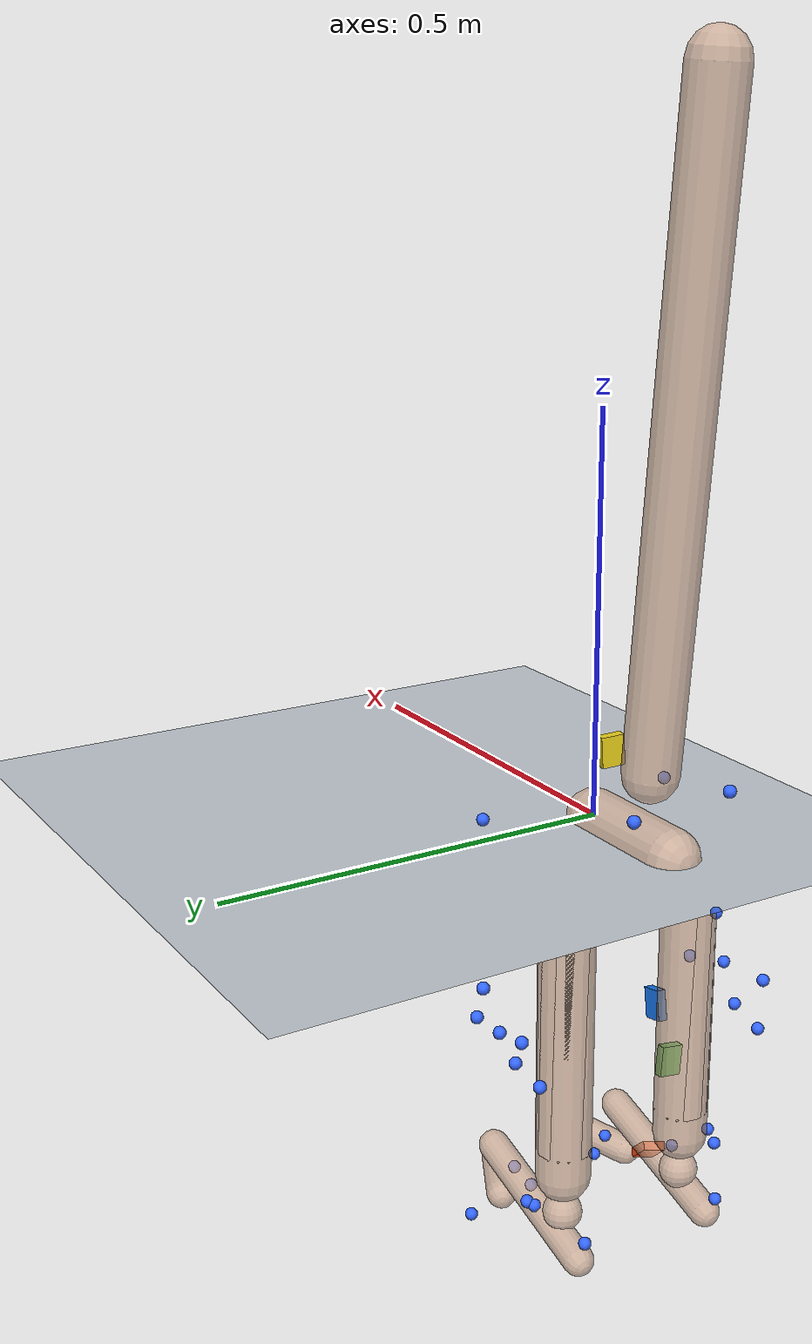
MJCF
<mujoco model="AB12">
  <compiler angle="radian" autolimits="true"/>
  <option timestep="0.005" gravity="0 0 -9.81"><flag contact="disable"/></option>
  <visual><global offwidth="1280" offheight="720"/></visual>
  <default><joint limited="false" damping="0"/><geom contype="0" conaffinity="0"/></default>
  <asset>
    <texture name="grid" type="2d" builtin="checker" rgb1="0.2 0.3 0.4" rgb2="0.3 0.4 0.5" width="512" height="512"/>
    <material name="grid" texture="grid" texrepeat="2 2" texuniform="true"/>
    <material name="skin" rgba="0.8 0.65 0.55 0.7"/>
  </asset>
  <worldbody>
    <light pos="0 0 4" dir="0 0 -1"/>
    <geom name="floor" type="plane" size="0 0 0.05" material="grid"/>
    <body name="pelvis" pos="0 0 0" quat="1 0 0 0">
      <joint name="pelvis_tx" type="slide" axis="1 0 0"/>
      <joint name="pelvis_ty" type="slide" axis="0 0 1"/>
      <joint name="pelvis_tz" type="slide" axis="0 -1 0"/>
      <joint name="pelvis_tilt" type="hinge" axis="0 -1 0"/>
      <joint name="pelvis_list" type="hinge" axis="1 0 0"/>
      <joint name="pelvis_rotation" type="hinge" axis="0 0 1"/>
      <inertial pos="-0.07715443 0 0" mass="14.0995" diaginertia="0.1409953 0.1409953 0.1409953"/>
      <geom type="capsule" fromto="0 0 0 -0.15430886 0 0" size="0.035" material="skin" mass="0"/>
      <site name="m_R_ASIS" pos="0.043983558 -0.14042451 0.0079280897" size="0.008" rgba="0.2 0.4 1 1" group="2"/>
      <site name="m_L_ASIS" pos="0.03976202 0.13610906 0.0093968078" size="0.008" rgba="0.2 0.4 1 1" group="2"/>
      <site name="m_L_PSIS" pos="-0.17033941 0.067238765 0.063340387" size="0.008" rgba="0.2 0.4 1 1" group="2"/>
      <site name="m_R_PSIS" pos="-0.17360342 -0.066975278 0.074198907" size="0.008" rgba="0.2 0.4 1 1" group="2"/>
      <body name="femur_r" pos="-0.07715443 -0.091122983 -0.072134482" quat="1 0 0 0">
        <joint name="hip_flexion_r" type="hinge" axis="0 -1 0"/>
        <joint name="hip_adduction_r" type="hinge" axis="1 0 0"/>
        <joint name="hip_rotation_r" type="hinge" axis="0 0 1"/>
        <inertial pos="0 0 -0.16202435" mass="11.1357" diaginertia="0.11135719 0.11135719 0.11135719"/>
        <geom type="capsule" fromto="0 0 0 0 0 -0.3240487" size="0.035" material="skin" mass="0"/>
        <site name="m_R_Thigh_Upper" pos="0.061456934 -0.096307225 -0.098305812" size="0.008" rgba="0.2 0.4 1 1" group="2"/>
        <site name="m_R_Thigh_Front" pos="0.080273714 -0.070749892 -0.16125976" size="0.008" rgba="0.2 0.4 1 1" group="2"/>
        <site name="m_R_Thigh_Rear" pos="0.035883593 -0.091401105 -0.15639493" size="0.008" rgba="0.2 0.4 1 1" group="2"/>
        <site name="m_R_Knee_Lat" pos="-0.0018658824 -0.045486738 -0.37072767" size="0.008" rgba="0.2 0.4 1 1" group="2"/>
        <site name="imu_thigh" type="box" size="0.02 0.015 0.006" pos="0.051977957 0.0056051035 -0.19714684" quat="0.56221313 0.54476797 -0.47096487 0.40661573" rgba="0.1 0.5 1 1" group="1"/>
        <body name="tibia_r" pos="0 0 0" quat="1 0 0 0">
          <joint name="knee_r_translation1" type="slide" axis="1 0 0"/>
          <joint name="knee_r_translation2" type="slide" axis="0 0 1"/>
          <joint name="knee_angle_r" type="hinge" axis="0 -1 0"/>
          <inertial pos="0 0 -0.18022266" mass="4.43865" diaginertia="0.044386521 0.044386521 0.044386521"/>
          <geom type="capsule" fromto="0 0 0 0 0 -0.36044532" size="0.035" material="skin" mass="0"/>
          <site name="m_R_Shank_Upper" pos="-0.056617927 -0.077858928 -0.13979234" size="0.008" rgba="0.2 0.4 1 1" group="2"/>
          <site name="m_R_Shank_Front" pos="-0.012494069 -0.07136398 -0.19007319" size="0.008" rgba="0.2 0.4 1 1" group="2"/>
          <site name="m_R_Shank_Rear" pos="-0.067992096 -0.063246749 -0.19796673" size="0.008" rgba="0.2 0.4 1 1" group="2"/>
          <site name="m_R_Ankle_Lat" pos="-0.012331908 -0.048676994 -0.38698229" size="0.008" rgba="0.2 0.4 1 1" group="2"/>
          <site name="imu_shank" type="box" size="0.02 0.015 0.006" pos="0.023316172 0.0036755376 -0.2651324" quat="0.68556631 0.055509389 0.72508108 0.034277767" rgba="0.1 0.8 0.2 1" group="1"/>
          <body name="talus_r" pos="0 0 -0.41508164" quat="1 0 0 0">
            <joint name="ankle_angle_r" type="hinge" axis="-0.10501355 -0.97912632 -0.17402245"/>
            <inertial pos="0 0 0" mass="0.119721" diaginertia="0.0011972089 0.0011972089 0.0011972089"/>
            <geom type="sphere" size="0.025" material="skin" mass="0"/>
            <body name="calcn_r" pos="-0.047077981 -0.0076452247 -0.040494593" quat="1 0 0 0">
              <joint name="subtalar_angle_r" type="hinge" axis="0.78717961 0.12094949 0.60474746"/>
              <inertial pos="0.097795149 0 0.029338545" mass="1.49651" diaginertia="0.014965112 0.014965112 0.014965112"/>
              <geom type="capsule" fromto="0 0 0 0.1955903 0 0.058677089" size="0.02" material="skin" mass="0"/>
              <site name="m_R_Heel" pos="-0.016078069 -0.0034835804 0.026161224" size="0.008" rgba="0.2 0.4 1 1" group="2"/>
              <site name="m_R_Toe_Lat" pos="0.14725056 -0.060948239 -0.0018715595" size="0.008" rgba="0.2 0.4 1 1" group="2"/>
              <site name="m_R_Toe_Med" pos="0.17908964 0.046779981 0.003740019" size="0.008" rgba="0.2 0.4 1 1" group="2"/>
              <site name="m_R_Toe_Tip" pos="0.18715187 0.023664384 0.020267258" size="0.008" rgba="0.2 0.4 1 1" group="2"/>
              <site name="imu_foot" type="box" size="0.02 0.015 0.006" pos="0.13325151 -0.0093313022 0.017200847" quat="0.9202808 0.13012591 0.35859178 -0.08696223" rgba="1 0.3 0.1 1" group="1"/>
              <body name="toes_r" pos="0.17485773 -0.0010561876 -0.001955903" quat="1 0 0 0">
                <joint name="mtp_angle_r" type="hinge" axis="-0.5809544 -0.81393611 0"/>
                <inertial pos="0.033837122 0.017114151 0.0058677089" mass="0.259315" diaginertia="0.0025931546 0.0025931546 0.0025931546"/>
                <geom type="capsule" fromto="0 0 0 0.067674243 0.034228302 0.011735418" size="0.02" material="skin" mass="0"/>
              </body>
            </body>
          </body>
        </body>
      </body>
      <body name="femur_l" pos="-0.07715443 0.091122983 -0.072134482" quat="1 0 0 0">
        <joint name="hip_flexion_l" type="hinge" axis="0 -1 0"/>
        <joint name="hip_adduction_l" type="hinge" axis="-1 0 0"/>
        <joint name="hip_rotation_l" type="hinge" axis="0 0 -1"/>
        <inertial pos="0 0 -0.16202435" mass="11.1357" diaginertia="0.11135719 0.11135719 0.11135719"/>
        <geom type="capsule" fromto="0 0 0 0 0 -0.3240487" size="0.035" material="skin" mass="0"/>
        <site name="m_L_Thigh_Upper" pos="0.018322348 0.10535582 -0.085251929" size="0.008" rgba="0.2 0.4 1 1" group="2"/>
        <site name="m_L_Thigh_Front" pos="0.052304428 0.093149921 -0.14183419" size="0.008" rgba="0.2 0.4 1 1" group="2"/>
        <site name="m_L_Thigh_Rear" pos="-0.0069196455 0.098419093 -0.13371517" size="0.008" rgba="0.2 0.4 1 1" group="2"/>
        <site name="m_L_Knee_Lat" pos="-0.0017085929 0.05416158 -0.38128089" size="0.008" rgba="0.2 0.4 1 1" group="2"/>
        <body name="tibia_l" pos="0 0 0" quat="1 0 0 0">
          <joint name="knee_l_translation1" type="slide" axis="1 0 0"/>
          <joint name="knee_l_translation2" type="slide" axis="0 0 1"/>
          <joint name="knee_angle_l" type="hinge" axis="0 -1 0"/>
          <inertial pos="0 0 -0.18022266" mass="4.43865" diaginertia="0.044386521 0.044386521 0.044386521"/>
          <geom type="capsule" fromto="0 0 0 0 0 -0.36044532" size="0.035" material="skin" mass="0"/>
          <site name="m_L_Shank_Upper" pos="-0.036793303 0.086908038 -0.13628313" size="0.008" rgba="0.2 0.4 1 1" group="2"/>
          <site name="m_L_Shank_Front" pos="0.00065718824 0.071011716 -0.18609703" size="0.008" rgba="0.2 0.4 1 1" group="2"/>
          <site name="m_L_Shank_Rear" pos="-0.055466431 0.073235348 -0.18973282" size="0.008" rgba="0.2 0.4 1 1" group="2"/>
          <site name="m_L_Ankle_Lat" pos="-0.0088468919 0.048177175 -0.38478184" size="0.008" rgba="0.2 0.4 1 1" group="2"/>
          <body name="talus_l" pos="0 0 -0.41508164" quat="1 0 0 0">
            <joint name="ankle_angle_l" type="hinge" axis="0.10501355 -0.97912632 0.17402245"/>
            <inertial pos="0 0 0" mass="0.119721" diaginertia="0.0011972089 0.0011972089 0.0011972089"/>
            <geom type="sphere" size="0.025" material="skin" mass="0"/>
            <body name="calcn_l" pos="-0.047077981 0.0076452247 -0.040494593" quat="1 0 0 0">
              <joint name="subtalar_angle_l" type="hinge" axis="-0.78717961 0.12094949 -0.60474746"/>
              <inertial pos="0.097795149 0 0.029338545" mass="1.49651" diaginertia="0.014965112 0.014965112 0.014965112"/>
              <geom type="capsule" fromto="0 0 0 0.1955903 0 0.058677089" size="0.02" material="skin" mass="0"/>
              <site name="m_L_Heel" pos="-0.014810252 0.0011010352 0.032700384" size="0.008" rgba="0.2 0.4 1 1" group="2"/>
              <site name="m_L_Toe_Lat" pos="0.14557215 0.065347425 0.0052133203" size="0.008" rgba="0.2 0.4 1 1" group="2"/>
              <site name="m_L_Toe_Med" pos="0.1717439 -0.043125119 -0.003464189" size="0.008" rgba="0.2 0.4 1 1" group="2"/>
              <site name="m_L_Toe_Tip" pos="0.18351315 -0.024331829 0.023826383" size="0.008" rgba="0.2 0.4 1 1" group="2"/>
              <body name="toes_l" pos="0.17485773 0.0010561876 -0.001955903" quat="1 0 0 0">
                <joint name="mtp_angle_l" type="hinge" axis="0.5809544 -0.81393611 0"/>
                <inertial pos="0.033837122 -0.017114151 0.0058677089" mass="0.259315" diaginertia="0.0025931546 0.0025931546 0.0025931546"/>
                <geom type="capsule" fromto="0 0 0 0.067674243 -0.034228302 0.011735418" size="0.02" material="skin" mass="0"/>
              </body>
            </body>
          </body>
        </body>
      </body>
      <body name="torso" pos="-0.10989323 0 0.088940397" quat="1 0 0 0">
        <joint name="lumbar_extension" type="hinge" axis="0 -1 0"/>
        <joint name="lumbar_bending" type="hinge" axis="1 0 0"/>
        <joint name="lumbar_rotation" type="hinge" axis="0 0 1"/>
        <inertial pos="-0.036463131 0 0.38894007" mass="40.9884" diaginertia="0.40988364 0.40988364 0.40988364"/>
        <geom type="capsule" fromto="0 0 0 -0.072926263 0 0.77788014" size="0.035" material="skin" mass="0"/>
        <site name="imu_trunk" type="box" size="0.02 0.015 0.006" pos="0.11558293 -0.027577987 -0.010539528" quat="0.70731387 0.035659959 0.70063814 -0.086842666" rgba="0.9 0.8 0.1 1" group="1"/>
      </body>
    </body>
  </worldbody>
  <sensor>
<accelerometer name="imu_foot_acc" site="imu_foot"/>
<gyro name="imu_foot_gyr" site="imu_foot"/>
<accelerometer name="imu_shank_acc" site="imu_shank"/>
<gyro name="imu_shank_gyr" site="imu_shank"/>
<accelerometer name="imu_thigh_acc" site="imu_thigh"/>
<gyro name="imu_thigh_gyr" site="imu_thigh"/>
<accelerometer name="imu_trunk_acc" site="imu_trunk"/>
<gyro name="imu_trunk_gyr" site="imu_trunk"/>
</sensor>
</mujoco>
